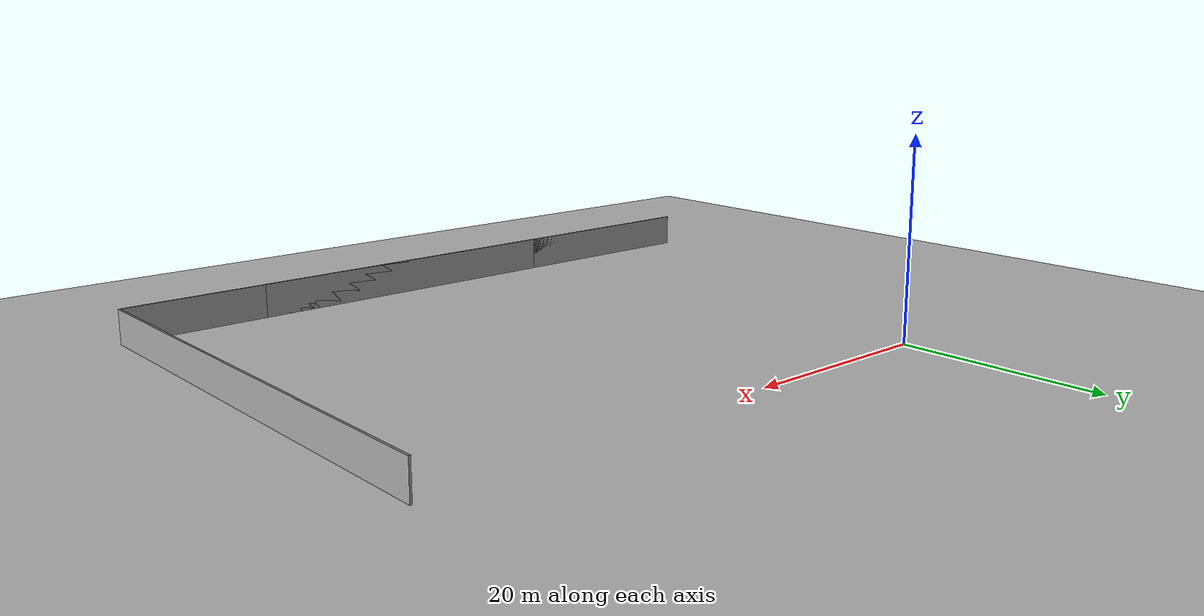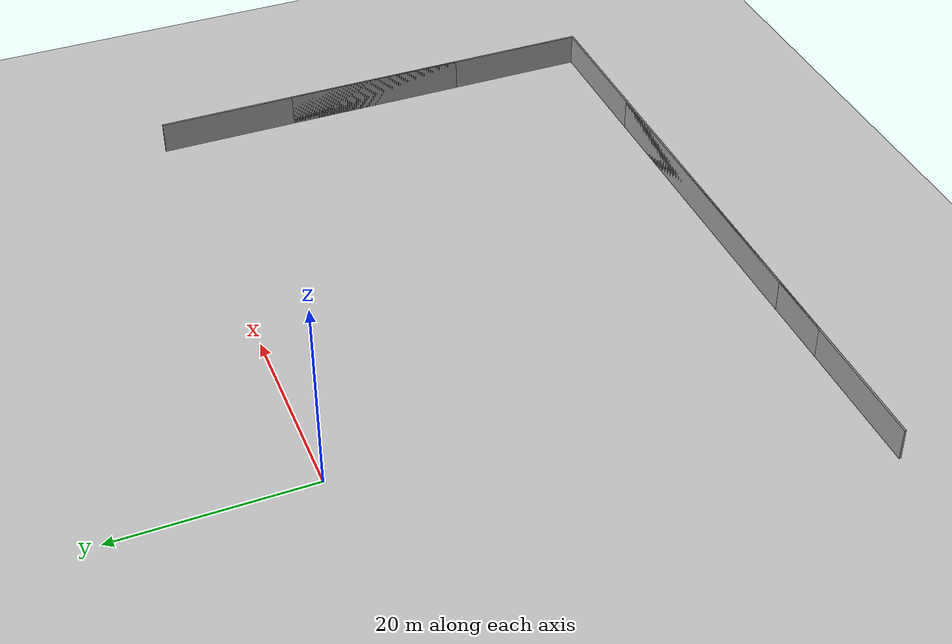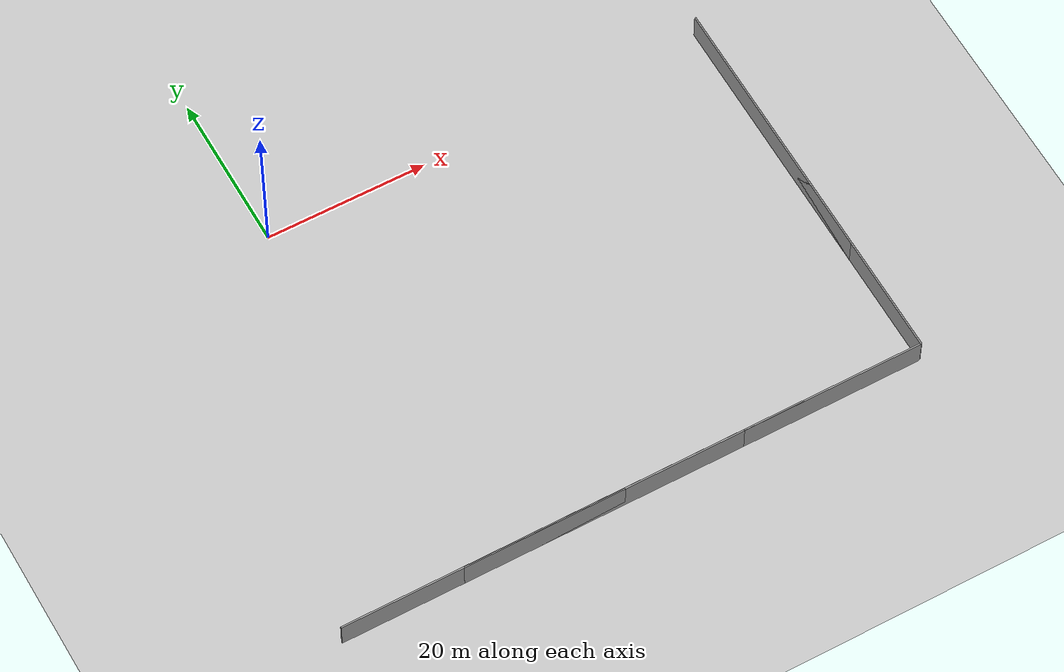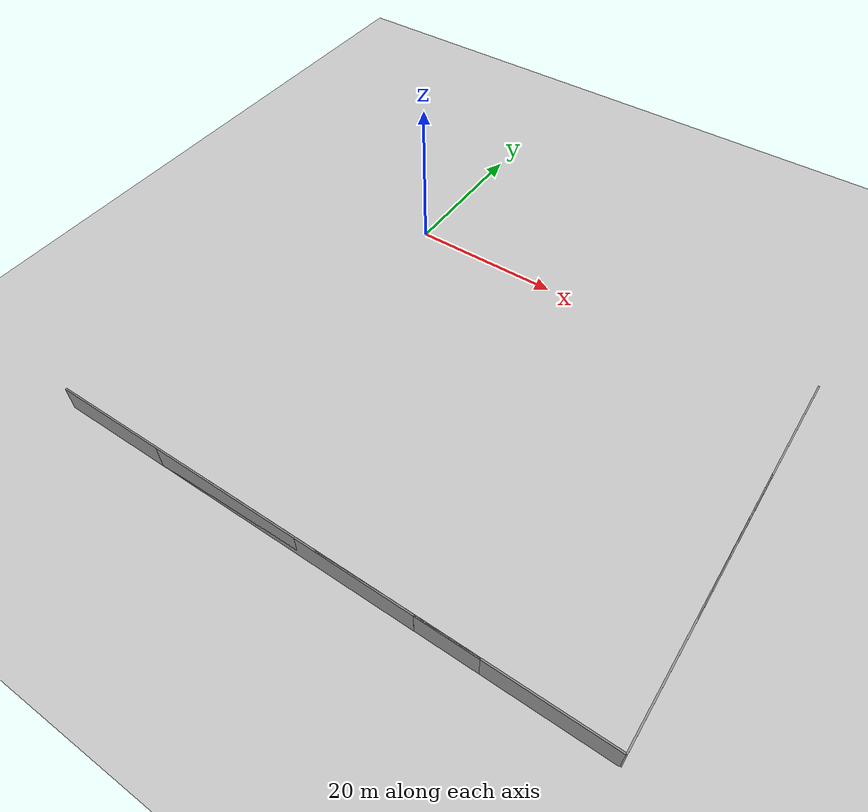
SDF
<sdf version="1.6">
 <world name="default">
  <model name="ground_plane">
   <static>1</static>
   <link name="link">
    <collision name="collision">
     <geometry><plane><normal>0 0 1</normal><size>100 100</size></plane></geometry>
     <surface><friction><ode><mu>100</mu><mu2>50</mu2></ode></friction></surface>
    </collision>
    <visual name="visual">
     <cast_shadows>0</cast_shadows>
     <geometry><plane><normal>0 0 1</normal><size>100 100</size></plane></geometry>
     <material>
      <script><uri>file://media/materials/scripts/gazebo.material</uri><name>Gazebo/Grey</name></script>
     </material>
    </visual>
    <velocity_decay><linear>0</linear><angular>0</angular></velocity_decay>
   </link>
  </model>
  <model name="wall">
   <link name="link">
    <pose>0 0 1.4 0 -0 0</pose>
    <inertial>
     <mass>1</mass>
     <inertia><ixx>1</ixx><ixy>0</ixy><ixz>0</ixz><iyy>1</iyy><iyz>0</iyz><izz>1</izz></inertia>
    </inertial>
    <visual name="ModelPreview_1::link::visual_1">
     <cast_shadows>0</cast_shadows>
     <geometry><box><size>20 0.2 4</size></box></geometry>
     <material>
      <script>
       <uri>model://grey_wall/materials/scripts</uri>
       <uri>model://grey_wall/materials/textures</uri>
       <name>vrc/grey_wall</name>
      </script>
      <ambient>1 1 1 1</ambient>
      <diffuse>1 1 1 1</diffuse>
      <specular>0 0 0 1</specular>
      <emissive>0 0 0 1</emissive>
      <shader type="vertex"><normal_map>__default__</normal_map></shader>
     </material>
    </visual>
    <visual name="visual">
     <cast_shadows>0</cast_shadows>
     <geometry><box><size>50 0.2 4</size></box></geometry>
     <material>
      <script>
       <uri>model://grey_wall/materials/scripts</uri>
       <uri>model://grey_wall/materials/textures</uri>
       <name>vrc/grey_wall</name>
      </script>
      <ambient>1 1 1 1</ambient>
      <diffuse>1 1 1 1</diffuse>
      <specular>0 0 0 1</specular>
      <emissive>0 0 0 1</emissive>
      <shader type="vertex"><normal_map>__default__</normal_map></shader>
     </material>
    </visual>
    <collision name="collision">
     <geometry><box><size>50 0.2 4</size></box></geometry>
     <surface>
      <friction>
       <ode><mu>1</mu><mu2>1</mu2><fdir1>0 0 0</fdir1><slip1>0</slip1><slip2>0</slip2></ode>
       <torsional>
        <coefficient>1</coefficient>
        <patch_radius>0</patch_radius>
        <surface_radius>0</surface_radius>
        <use_patch_radius>1</use_patch_radius>
        <ode><slip>0</slip></ode>
       </torsional>
      </friction>
      <bounce><restitution_coefficient>0</restitution_coefficient><threshold>1e+06</threshold></bounce>
      <contact>
       <collide_without_contact>0</collide_without_contact>
       <collide_without_contact_bitmask>1</collide_without_contact_bitmask>
       <collide_bitmask>1</collide_bitmask>
       <ode>
        <soft_cfm>0</soft_cfm>
        <soft_erp>0.2</soft_erp>
        <kp>1e+13</kp>
        <kd>1</kd>
        <max_vel>0.01</max_vel>
        <min_depth>0</min_depth>
       </ode>
       <bullet>
        <split_impulse>1</split_impulse>
        <split_impulse_penetration_threshold>-0.01</split_impulse_penetration_threshold>
        <soft_cfm>0</soft_cfm>
        <soft_erp>0.2</soft_erp>
        <kp>1e+13</kp>
        <kd>1</kd>
       </bullet>
      </contact>
     </surface>
    </collision>
   </link>
   <static>1</static>
   <pose>8.13717 -49.3717 0 0 -0 0</pose>
  </model>
  <model name="wall_clone_0">
   <link name="link">
    <pose>0 0 1.4 0 -0 0</pose>
    <inertial>
     <mass>1</mass>
     <inertia><ixx>1</ixx><ixy>0</ixy><ixz>0</ixz><iyy>1</iyy><iyz>0</iyz><izz>1</izz></inertia>
    </inertial>
    <visual name="ModelPreview_1::link::visual_1">
     <cast_shadows>0</cast_shadows>
     <geometry><box><size>20 0.2 4</size></box></geometry>
     <material>
      <script>
       <uri>model://grey_wall/materials/scripts</uri>
       <uri>model://grey_wall/materials/textures</uri>
       <name>vrc/grey_wall</name>
      </script>
      <ambient>1 1 1 1</ambient>
      <diffuse>1 1 1 1</diffuse>
      <specular>0 0 0 1</specular>
      <emissive>0 0 0 1</emissive>
      <shader type="vertex"><normal_map>__default__</normal_map></shader>
     </material>
    </visual>
    <visual name="visual">
     <cast_shadows>0</cast_shadows>
     <geometry><box><size>50 0.2 4</size></box></geometry>
     <material>
      <script>
       <uri>model://grey_wall/materials/scripts</uri>
       <uri>model://grey_wall/materials/textures</uri>
       <name>vrc/grey_wall</name>
      </script>
      <ambient>1 1 1 1</ambient>
      <diffuse>1 1 1 1</diffuse>
      <specular>0 0 0 1</specular>
      <emissive>0 0 0 1</emissive>
      <shader type="vertex"><normal_map>__default__</normal_map></shader>
     </material>
    </visual>
    <collision name="collision">
     <geometry><box><size>50 0.2 4</size></box></geometry>
     <surface>
      <friction>
       <ode><mu>1</mu><mu2>1</mu2><fdir1>0 0 0</fdir1><slip1>0</slip1><slip2>0</slip2></ode>
       <torsional>
        <coefficient>1</coefficient>
        <patch_radius>0</patch_radius>
        <surface_radius>0</surface_radius>
        <use_patch_radius>1</use_patch_radius>
        <ode><slip>0</slip></ode>
       </torsional>
      </friction>
      <bounce><restitution_coefficient>0</restitution_coefficient><threshold>1e+06</threshold></bounce>
      <contact>
       <collide_without_contact>0</collide_without_contact>
       <collide_without_contact_bitmask>1</collide_without_contact_bitmask>
       <collide_bitmask>1</collide_bitmask>
       <ode>
        <soft_cfm>0</soft_cfm>
        <soft_erp>0.2</soft_erp>
        <kp>1e+13</kp>
        <kd>1</kd>
        <max_vel>0.01</max_vel>
        <min_depth>0</min_depth>
       </ode>
       <bullet>
        <split_impulse>1</split_impulse>
        <split_impulse_penetration_threshold>-0.01</split_impulse_penetration_threshold>
        <soft_cfm>0</soft_cfm>
        <soft_erp>0.2</soft_erp>
        <kp>1e+13</kp>
        <kd>1</kd>
       </bullet>
      </contact>
     </surface>
    </collision>
   </link>
   <static>1</static>
   <pose>30.7671 -49.3607 0 0 -0 0</pose>
  </model>
  <model name="wall_clone_0_clone">
   <link name="link">
    <pose>0 0 1.4 0 -0 0</pose>
    <inertial>
     <mass>1</mass>
     <inertia><ixx>1</ixx><ixy>0</ixy><ixz>0</ixz><iyy>1</iyy><iyz>0</iyz><izz>1</izz></inertia>
    </inertial>
    <visual name="ModelPreview_1::link::visual_1">
     <cast_shadows>0</cast_shadows>
     <geometry><box><size>20 0.2 4</size></box></geometry>
     <material>
      <script>
       <uri>model://grey_wall/materials/scripts</uri>
       <uri>model://grey_wall/materials/textures</uri>
       <name>vrc/grey_wall</name>
      </script>
      <ambient>1 1 1 1</ambient>
      <diffuse>1 1 1 1</diffuse>
      <specular>0 0 0 1</specular>
      <emissive>0 0 0 1</emissive>
      <shader type="vertex"><normal_map>__default__</normal_map></shader>
     </material>
    </visual>
    <visual name="visual">
     <cast_shadows>0</cast_shadows>
     <geometry><box><size>50 0.2 4</size></box></geometry>
     <material>
      <script>
       <uri>model://grey_wall/materials/scripts</uri>
       <uri>model://grey_wall/materials/textures</uri>
       <name>vrc/grey_wall</name>
      </script>
      <ambient>1 1 1 1</ambient>
      <diffuse>1 1 1 1</diffuse>
      <specular>0 0 0 1</specular>
      <emissive>0 0 0 1</emissive>
      <shader type="vertex"><normal_map>__default__</normal_map></shader>
     </material>
    </visual>
    <collision name="collision">
     <geometry><box><size>50 0.2 4</size></box></geometry>
     <surface>
      <friction>
       <ode><mu>1</mu><mu2>1</mu2><fdir1>0 0 0</fdir1><slip1>0</slip1><slip2>0</slip2></ode>
       <torsional>
        <coefficient>1</coefficient>
        <patch_radius>0</patch_radius>
        <surface_radius>0</surface_radius>
        <use_patch_radius>1</use_patch_radius>
        <ode><slip>0</slip></ode>
       </torsional>
      </friction>
      <bounce><restitution_coefficient>0</restitution_coefficient><threshold>1e+06</threshold></bounce>
      <contact>
       <collide_without_contact>0</collide_without_contact>
       <collide_without_contact_bitmask>1</collide_without_contact_bitmask>
       <collide_bitmask>1</collide_bitmask>
       <ode>
        <soft_cfm>0</soft_cfm>
        <soft_erp>0.2</soft_erp>
        <kp>1e+13</kp>
        <kd>1</kd>
        <max_vel>0.01</max_vel>
        <min_depth>0</min_depth>
       </ode>
       <bullet>
        <split_impulse>1</split_impulse>
        <split_impulse_penetration_threshold>-0.01</split_impulse_penetration_threshold>
        <soft_cfm>0</soft_cfm>
        <soft_erp>0.2</soft_erp>
        <kp>1e+13</kp>
        <kd>1</kd>
       </bullet>
      </contact>
     </surface>
    </collision>
   </link>
   <static>1</static>
   <pose>55.8293 -24.385 0 0 -0 1.57</pose>
  </model>
 </world>
</sdf>
